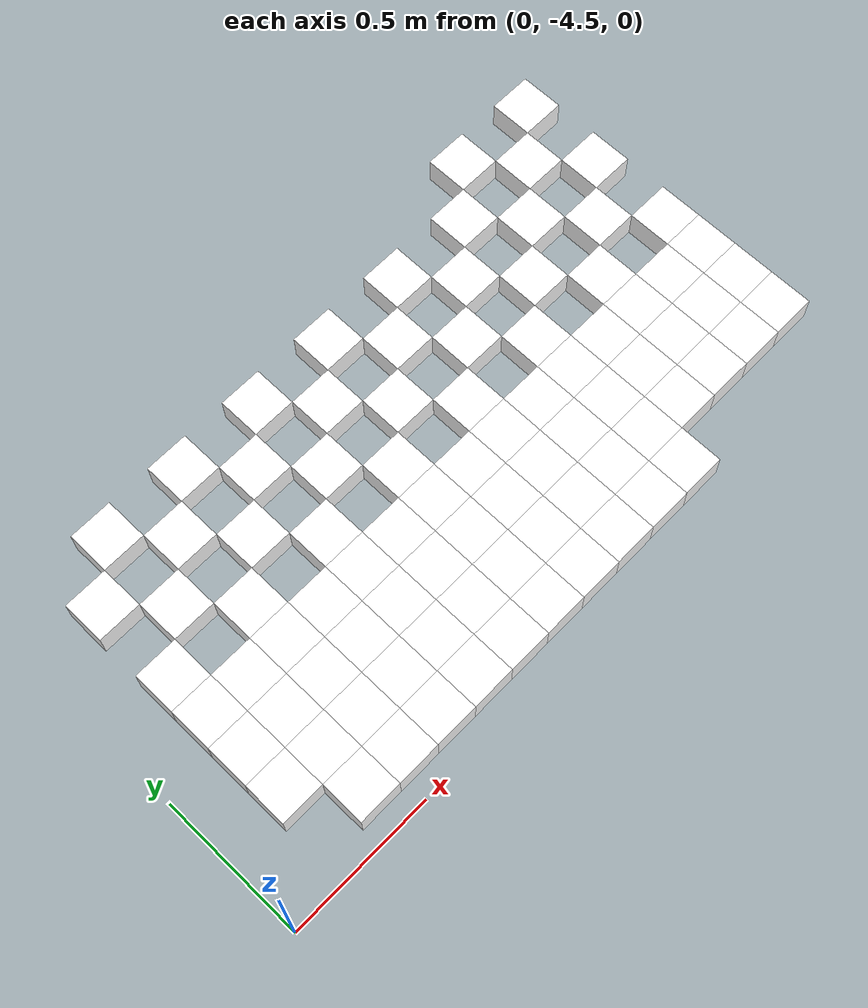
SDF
<sdf version="1.7">
 <world name="default">
  <include><uri>model://sun</uri></include>
  <model name="static_environment">
   <static>true</static>
   <link name="region_678">
    <pose>0.24963962053528332 -3.4502001898323322 0.0 0.0 0.0 4.7123</pose>
    <collision name="region_678_collision">
     <geometry><box><size>0.15 0.15 0.1</size></box></geometry>
     <surface><friction><ode><mu>1.0</mu><mu2>1.0</mu2></ode></friction></surface>
    </collision>
    <visual name="region_678_visual">
     <geometry><box><size>0.15 0.15 0.1</size></box></geometry>
     <material><ambient>1.0 1.0 1.0 1.0</ambient><diffuse>1.0 1.0 1.0 1.0</diffuse></material>
    </visual>
   </link>
   <link name="region_679">
    <pose>0.2496129264199114 -3.750200188644706 0.0 0.0 0.0 4.7123</pose>
    <collision name="region_679_collision">
     <geometry><box><size>0.15 0.15 0.1</size></box></geometry>
     <surface><friction><ode><mu>1.0</mu><mu2>1.0</mu2></ode></friction></surface>
    </collision>
    <visual name="region_679_visual">
     <geometry><box><size>0.15 0.15 0.1</size></box></geometry>
     <material><ambient>1.0 1.0 1.0 1.0</ambient><diffuse>1.0 1.0 1.0 1.0</diffuse></material>
    </visual>
   </link>
   <link name="region_683">
    <pose>0.39965296699915553 -3.3002135374838306 0.0 0.0 0.0 4.7123</pose>
    <collision name="region_683_collision">
     <geometry><box><size>0.15 0.15 0.1</size></box></geometry>
     <surface><friction><ode><mu>1.0</mu><mu2>1.0</mu2></ode></friction></surface>
    </collision>
    <visual name="region_683_visual">
     <geometry><box><size>0.15 0.15 0.1</size></box></geometry>
     <material><ambient>1.0 1.0 1.0 1.0</ambient><diffuse>1.0 1.0 1.0 1.0</diffuse></material>
    </visual>
   </link>
   <link name="region_684">
    <pose>0.39962627288378405 -3.6002135362962053 0.0 0.0 0.0 4.7123</pose>
    <collision name="region_684_collision">
     <geometry><box><size>0.15 0.15 0.1</size></box></geometry>
     <surface><friction><ode><mu>1.0</mu><mu2>1.0</mu2></ode></friction></surface>
    </collision>
    <visual name="region_684_visual">
     <geometry><box><size>0.15 0.15 0.1</size></box></geometry>
     <material><ambient>1.0 1.0 1.0 1.0</ambient><diffuse>1.0 1.0 1.0 1.0</diffuse></material>
    </visual>
   </link>
   <link name="region_688">
    <pose>0.5496396193476567 -3.4502268839477037 0.0 0.0 0.0 4.7123</pose>
    <collision name="region_688_collision">
     <geometry><box><size>0.15 0.15 0.1</size></box></geometry>
     <surface><friction><ode><mu>1.0</mu><mu2>1.0</mu2></ode></friction></surface>
    </collision>
    <visual name="region_688_visual">
     <geometry><box><size>0.15 0.15 0.1</size></box></geometry>
     <material><ambient>1.0 1.0 1.0 1.0</ambient><diffuse>1.0 1.0 1.0 1.0</diffuse></material>
    </visual>
   </link>
   <link name="region_689">
    <pose>0.5496129252322848 -3.7502268827600784 0.0 0.0 0.0 4.7123</pose>
    <collision name="region_689_collision">
     <geometry><box><size>0.15 0.15 0.1</size></box></geometry>
     <surface><friction><ode><mu>1.0</mu><mu2>1.0</mu2></ode></friction></surface>
    </collision>
    <visual name="region_689_visual">
     <geometry><box><size>0.15 0.15 0.1</size></box></geometry>
     <material><ambient>1.0 1.0 1.0 1.0</ambient><diffuse>1.0 1.0 1.0 1.0</diffuse></material>
    </visual>
   </link>
   <link name="region_693">
    <pose>0.6996529658115294 -3.3002402315992025 0.0 0.0 0.0 4.7123</pose>
    <collision name="region_693_collision">
     <geometry><box><size>0.15 0.15 0.1</size></box></geometry>
     <surface><friction><ode><mu>1.0</mu><mu2>1.0</mu2></ode></friction></surface>
    </collision>
    <visual name="region_693_visual">
     <geometry><box><size>0.15 0.15 0.1</size></box></geometry>
     <material><ambient>1.0 1.0 1.0 1.0</ambient><diffuse>1.0 1.0 1.0 1.0</diffuse></material>
    </visual>
   </link>
   <link name="region_694">
    <pose>0.6996262716961579 -3.600240230411577 0.0 0.0 0.0 4.7123</pose>
    <collision name="region_694_collision">
     <geometry><box><size>0.15 0.15 0.1</size></box></geometry>
     <surface><friction><ode><mu>1.0</mu><mu2>1.0</mu2></ode></friction></surface>
    </collision>
    <visual name="region_694_visual">
     <geometry><box><size>0.15 0.15 0.1</size></box></geometry>
     <material><ambient>1.0 1.0 1.0 1.0</ambient><diffuse>1.0 1.0 1.0 1.0</diffuse></material>
    </visual>
   </link>
   <link name="region_698">
    <pose>0.8496396181600301 -3.450253578063075 0.0 0.0 0.0 4.7123</pose>
    <collision name="region_698_collision">
     <geometry><box><size>0.15 0.15 0.1</size></box></geometry>
     <surface><friction><ode><mu>1.0</mu><mu2>1.0</mu2></ode></friction></surface>
    </collision>
    <visual name="region_698_visual">
     <geometry><box><size>0.15 0.15 0.1</size></box></geometry>
     <material><ambient>1.0 1.0 1.0 1.0</ambient><diffuse>1.0 1.0 1.0 1.0</diffuse></material>
    </visual>
   </link>
   <link name="region_699">
    <pose>0.8496129240446582 -3.75025357687545 0.0 0.0 0.0 4.7123</pose>
    <collision name="region_699_collision">
     <geometry><box><size>0.15 0.15 0.1</size></box></geometry>
     <surface><friction><ode><mu>1.0</mu><mu2>1.0</mu2></ode></friction></surface>
    </collision>
    <visual name="region_699_visual">
     <geometry><box><size>0.15 0.15 0.1</size></box></geometry>
     <material><ambient>1.0 1.0 1.0 1.0</ambient><diffuse>1.0 1.0 1.0 1.0</diffuse></material>
    </visual>
   </link>
   <link name="region_703">
    <pose>0.9996529646239027 -3.300266925714574 0.0 0.0 0.0 4.7123</pose>
    <collision name="region_703_collision">
     <geometry><box><size>0.15 0.15 0.1</size></box></geometry>
     <surface><friction><ode><mu>1.0</mu><mu2>1.0</mu2></ode></friction></surface>
    </collision>
    <visual name="region_703_visual">
     <geometry><box><size>0.15 0.15 0.1</size></box></geometry>
     <material><ambient>1.0 1.0 1.0 1.0</ambient><diffuse>1.0 1.0 1.0 1.0</diffuse></material>
    </visual>
   </link>
   <link name="region_704">
    <pose>0.9996262705085313 -3.6002669245269483 0.0 0.0 0.0 4.7123</pose>
    <collision name="region_704_collision">
     <geometry><box><size>0.15 0.15 0.1</size></box></geometry>
     <surface><friction><ode><mu>1.0</mu><mu2>1.0</mu2></ode></friction></surface>
    </collision>
    <visual name="region_704_visual">
     <geometry><box><size>0.15 0.15 0.1</size></box></geometry>
     <material><ambient>1.0 1.0 1.0 1.0</ambient><diffuse>1.0 1.0 1.0 1.0</diffuse></material>
    </visual>
   </link>
   <link name="region_708">
    <pose>1.1496396169724035 -3.4502802721784476 0.0 0.0 0.0 4.7123</pose>
    <collision name="region_708_collision">
     <geometry><box><size>0.15 0.15 0.1</size></box></geometry>
     <surface><friction><ode><mu>1.0</mu><mu2>1.0</mu2></ode></friction></surface>
    </collision>
    <visual name="region_708_visual">
     <geometry><box><size>0.15 0.15 0.1</size></box></geometry>
     <material><ambient>1.0 1.0 1.0 1.0</ambient><diffuse>1.0 1.0 1.0 1.0</diffuse></material>
    </visual>
   </link>
   <link name="region_709">
    <pose>1.1496129228570315 -3.7502802709908214 0.0 0.0 0.0 4.7123</pose>
    <collision name="region_709_collision">
     <geometry><box><size>0.15 0.15 0.1</size></box></geometry>
     <surface><friction><ode><mu>1.0</mu><mu2>1.0</mu2></ode></friction></surface>
    </collision>
    <visual name="region_709_visual">
     <geometry><box><size>0.15 0.15 0.1</size></box></geometry>
     <material><ambient>1.0 1.0 1.0 1.0</ambient><diffuse>1.0 1.0 1.0 1.0</diffuse></material>
    </visual>
   </link>
   <link name="region_713">
    <pose>1.2996529634362761 -3.300293619829946 0.0 0.0 0.0 4.7123</pose>
    <collision name="region_713_collision">
     <geometry><box><size>0.15 0.15 0.1</size></box></geometry>
     <surface><friction><ode><mu>1.0</mu><mu2>1.0</mu2></ode></friction></surface>
    </collision>
    <visual name="region_713_visual">
     <geometry><box><size>0.15 0.15 0.1</size></box></geometry>
     <material><ambient>1.0 1.0 1.0 1.0</ambient><diffuse>1.0 1.0 1.0 1.0</diffuse></material>
    </visual>
   </link>
   <link name="region_714">
    <pose>1.2996262693209046 -3.6002936186423207 0.0 0.0 0.0 4.7123</pose>
    <collision name="region_714_collision">
     <geometry><box><size>0.15 0.15 0.1</size></box></geometry>
     <surface><friction><ode><mu>1.0</mu><mu2>1.0</mu2></ode></friction></surface>
    </collision>
    <visual name="region_714_visual">
     <geometry><box><size>0.15 0.15 0.1</size></box></geometry>
     <material><ambient>1.0 1.0 1.0 1.0</ambient><diffuse>1.0 1.0 1.0 1.0</diffuse></material>
    </visual>
   </link>
   <link name="region_718">
    <pose>1.4496396157847773 -3.450306966293819 0.0 0.0 0.0 4.7123</pose>
    <collision name="region_718_collision">
     <geometry><box><size>0.15 0.15 0.1</size></box></geometry>
     <surface><friction><ode><mu>1.0</mu><mu2>1.0</mu2></ode></friction></surface>
    </collision>
    <visual name="region_718_visual">
     <geometry><box><size>0.15 0.15 0.1</size></box></geometry>
     <material><ambient>1.0 1.0 1.0 1.0</ambient><diffuse>1.0 1.0 1.0 1.0</diffuse></material>
    </visual>
   </link>
   <link name="region_719">
    <pose>1.4496129216694054 -3.750306965106193 0.0 0.0 0.0 4.7123</pose>
    <collision name="region_719_collision">
     <geometry><box><size>0.15 0.15 0.1</size></box></geometry>
     <surface><friction><ode><mu>1.0</mu><mu2>1.0</mu2></ode></friction></surface>
    </collision>
    <visual name="region_719_visual">
     <geometry><box><size>0.15 0.15 0.1</size></box></geometry>
     <material><ambient>1.0 1.0 1.0 1.0</ambient><diffuse>1.0 1.0 1.0 1.0</diffuse></material>
    </visual>
   </link>
   <link name="region_723">
    <pose>1.5996529622486495 -3.300320313945318 0.0 0.0 0.0 4.7123</pose>
    <collision name="region_723_collision">
     <geometry><box><size>0.15 0.15 0.1</size></box></geometry>
     <surface><friction><ode><mu>1.0</mu><mu2>1.0</mu2></ode></friction></surface>
    </collision>
    <visual name="region_723_visual">
     <geometry><box><size>0.15 0.15 0.1</size></box></geometry>
     <material><ambient>1.0 1.0 1.0 1.0</ambient><diffuse>1.0 1.0 1.0 1.0</diffuse></material>
    </visual>
   </link>
   <link name="region_724">
    <pose>1.599626268133278 -3.600320312757692 0.0 0.0 0.0 4.7123</pose>
    <collision name="region_724_collision">
     <geometry><box><size>0.15 0.15 0.1</size></box></geometry>
     <surface><friction><ode><mu>1.0</mu><mu2>1.0</mu2></ode></friction></surface>
    </collision>
    <visual name="region_724_visual">
     <geometry><box><size>0.15 0.15 0.1</size></box></geometry>
     <material><ambient>1.0 1.0 1.0 1.0</ambient><diffuse>1.0 1.0 1.0 1.0</diffuse></material>
    </visual>
   </link>
   <link name="region_728">
    <pose>1.7496396145971507 -3.4503336604091905 0.0 0.0 0.0 4.7123</pose>
    <collision name="region_728_collision">
     <geometry><box><size>0.15 0.15 0.1</size></box></geometry>
     <surface><friction><ode><mu>1.0</mu><mu2>1.0</mu2></ode></friction></surface>
    </collision>
    <visual name="region_728_visual">
     <geometry><box><size>0.15 0.15 0.1</size></box></geometry>
     <material><ambient>1.0 1.0 1.0 1.0</ambient><diffuse>1.0 1.0 1.0 1.0</diffuse></material>
    </visual>
   </link>
   <link name="region_729">
    <pose>1.7496129204817787 -3.7503336592215653 0.0 0.0 0.0 4.7123</pose>
    <collision name="region_729_collision">
     <geometry><box><size>0.15 0.15 0.1</size></box></geometry>
     <surface><friction><ode><mu>1.0</mu><mu2>1.0</mu2></ode></friction></surface>
    </collision>
    <visual name="region_729_visual">
     <geometry><box><size>0.15 0.15 0.1</size></box></geometry>
     <material><ambient>1.0 1.0 1.0 1.0</ambient><diffuse>1.0 1.0 1.0 1.0</diffuse></material>
    </visual>
   </link>
   <link name="region_733">
    <pose>1.8996529610610229 -3.3003470080606894 0.0 0.0 0.0 4.7123</pose>
    <collision name="region_733_collision">
     <geometry><box><size>0.15 0.15 0.1</size></box></geometry>
     <surface><friction><ode><mu>1.0</mu><mu2>1.0</mu2></ode></friction></surface>
    </collision>
    <visual name="region_733_visual">
     <geometry><box><size>0.15 0.15 0.1</size></box></geometry>
     <material><ambient>1.0 1.0 1.0 1.0</ambient><diffuse>1.0 1.0 1.0 1.0</diffuse></material>
    </visual>
   </link>
   <link name="region_734">
    <pose>1.8996262669456514 -3.6003470068730636 0.0 0.0 0.0 4.7123</pose>
    <collision name="region_734_collision">
     <geometry><box><size>0.15 0.15 0.1</size></box></geometry>
     <surface><friction><ode><mu>1.0</mu><mu2>1.0</mu2></ode></friction></surface>
    </collision>
    <visual name="region_734_visual">
     <geometry><box><size>0.15 0.15 0.1</size></box></geometry>
     <material><ambient>1.0 1.0 1.0 1.0</ambient><diffuse>1.0 1.0 1.0 1.0</diffuse></material>
    </visual>
   </link>
   <link name="region_737">
    <pose>2.0496663075248955 -3.1503603557121886 0.0 0.0 0.0 4.7123</pose>
    <collision name="region_737_collision">
     <geometry><box><size>0.15 0.15 0.1</size></box></geometry>
     <surface><friction><ode><mu>1.0</mu><mu2>1.0</mu2></ode></friction></surface>
    </collision>
    <visual name="region_737_visual">
     <geometry><box><size>0.15 0.15 0.1</size></box></geometry>
     <material><ambient>1.0 1.0 1.0 1.0</ambient><diffuse>1.0 1.0 1.0 1.0</diffuse></material>
    </visual>
   </link>
   <link name="region_738">
    <pose>2.049639613409524 -3.450360354524563 0.0 0.0 0.0 4.7123</pose>
    <collision name="region_738_collision">
     <geometry><box><size>0.15 0.15 0.1</size></box></geometry>
     <surface><friction><ode><mu>1.0</mu><mu2>1.0</mu2></ode></friction></surface>
    </collision>
    <visual name="region_738_visual">
     <geometry><box><size>0.15 0.15 0.1</size></box></geometry>
     <material><ambient>1.0 1.0 1.0 1.0</ambient><diffuse>1.0 1.0 1.0 1.0</diffuse></material>
    </visual>
   </link>
   <link name="region_739">
    <pose>2.0496129192941526 -3.7503603533369367 0.0 0.0 0.0 4.7123</pose>
    <collision name="region_739_collision">
     <geometry><box><size>0.15 0.15 0.1</size></box></geometry>
     <surface><friction><ode><mu>1.0</mu><mu2>1.0</mu2></ode></friction></surface>
    </collision>
    <visual name="region_739_visual">
     <geometry><box><size>0.15 0.15 0.1</size></box></geometry>
     <material><ambient>1.0 1.0 1.0 1.0</ambient><diffuse>1.0 1.0 1.0 1.0</diffuse></material>
    </visual>
   </link>
   <link name="region_743">
    <pose>2.199652959873397 -3.3003737021760613 0.0 0.0 0.0 4.7123</pose>
    <collision name="region_743_collision">
     <geometry><box><size>0.15 0.15 0.1</size></box></geometry>
     <surface><friction><ode><mu>1.0</mu><mu2>1.0</mu2></ode></friction></surface>
    </collision>
    <visual name="region_743_visual">
     <geometry><box><size>0.15 0.15 0.1</size></box></geometry>
     <material><ambient>1.0 1.0 1.0 1.0</ambient><diffuse>1.0 1.0 1.0 1.0</diffuse></material>
    </visual>
   </link>
   <link name="region_744">
    <pose>2.1996262657580257 -3.600373700988435 0.0 0.0 0.0 4.7123</pose>
    <collision name="region_744_collision">
     <geometry><box><size>0.15 0.15 0.1</size></box></geometry>
     <surface><friction><ode><mu>1.0</mu><mu2>1.0</mu2></ode></friction></surface>
    </collision>
    <visual name="region_744_visual">
     <geometry><box><size>0.15 0.15 0.1</size></box></geometry>
     <material><ambient>1.0 1.0 1.0 1.0</ambient><diffuse>1.0 1.0 1.0 1.0</diffuse></material>
    </visual>
   </link>
   <link name="region_747">
    <pose>2.3496663063372702 -3.15038704982756 0.0 0.0 0.0 4.7123</pose>
    <collision name="region_747_collision">
     <geometry><box><size>0.15 0.15 0.1</size></box></geometry>
     <surface><friction><ode><mu>1.0</mu><mu2>1.0</mu2></ode></friction></surface>
    </collision>
    <visual name="region_747_visual">
     <geometry><box><size>0.15 0.15 0.1</size></box></geometry>
     <material><ambient>1.0 1.0 1.0 1.0</ambient><diffuse>1.0 1.0 1.0 1.0</diffuse></material>
    </visual>
   </link>
   <link name="region_748">
    <pose>2.3496396122218988 -3.4503870486399344 0.0 0.0 0.0 4.7123</pose>
    <collision name="region_748_collision">
     <geometry><box><size>0.15 0.15 0.1</size></box></geometry>
     <surface><friction><ode><mu>1.0</mu><mu2>1.0</mu2></ode></friction></surface>
    </collision>
    <visual name="region_748_visual">
     <geometry><box><size>0.15 0.15 0.1</size></box></geometry>
     <material><ambient>1.0 1.0 1.0 1.0</ambient><diffuse>1.0 1.0 1.0 1.0</diffuse></material>
    </visual>
   </link>
   <link name="region_749">
    <pose>2.3496129181065273 -3.750387047452308 0.0 0.0 0.0 4.7123</pose>
    <collision name="region_749_collision">
     <geometry><box><size>0.15 0.15 0.1</size></box></geometry>
     <surface><friction><ode><mu>1.0</mu><mu2>1.0</mu2></ode></friction></surface>
    </collision>
    <visual name="region_749_visual">
     <geometry><box><size>0.15 0.15 0.1</size></box></geometry>
     <material><ambient>1.0 1.0 1.0 1.0</ambient><diffuse>1.0 1.0 1.0 1.0</diffuse></material>
    </visual>
   </link>
   <link name="region_900">
    <pose>0.24959957936222565 -3.9002001880508925 0.0 0.0 0.0 4.7123</pose>
    <collision name="region_900_collision">
     <geometry><box><size>0.15 0.15 0.1</size></box></geometry>
     <surface><friction><ode><mu>1.0</mu><mu2>1.0</mu2></ode></friction></surface>
    </collision>
    <visual name="region_900_visual">
     <geometry><box><size>0.15 0.15 0.1</size></box></geometry>
     <material><ambient>1.0 1.0 1.0 1.0</ambient><diffuse>1.0 1.0 1.0 1.0</diffuse></material>
    </visual>
   </link>
   <link name="region_901">
    <pose>0.2495862323045399 -4.05020018745708 0.0 0.0 0.0 4.7123</pose>
    <collision name="region_901_collision">
     <geometry><box><size>0.15 0.15 0.1</size></box></geometry>
     <surface><friction><ode><mu>1.0</mu><mu2>1.0</mu2></ode></friction></surface>
    </collision>
    <visual name="region_901_visual">
     <geometry><box><size>0.15 0.15 0.1</size></box></geometry>
     <material><ambient>1.0 1.0 1.0 1.0</ambient><diffuse>1.0 1.0 1.0 1.0</diffuse></material>
    </visual>
   </link>
   <link name="region_902">
    <pose>0.24957288524685373 -4.200200186863268 0.0 0.0 0.0 4.7123</pose>
    <collision name="region_902_collision">
     <geometry><box><size>0.15 0.15 0.1</size></box></geometry>
     <surface><friction><ode><mu>1.0</mu><mu2>1.0</mu2></ode></friction></surface>
    </collision>
    <visual name="region_902_visual">
     <geometry><box><size>0.15 0.15 0.1</size></box></geometry>
     <material><ambient>1.0 1.0 1.0 1.0</ambient><diffuse>1.0 1.0 1.0 1.0</diffuse></material>
    </visual>
   </link>
   <link name="region_910">
    <pose>0.3995995787684121 -3.9002135351085783 0.0 0.0 0.0 4.7123</pose>
    <collision name="region_910_collision">
     <geometry><box><size>0.15 0.15 0.1</size></box></geometry>
     <surface><friction><ode><mu>1.0</mu><mu2>1.0</mu2></ode></friction></surface>
    </collision>
    <visual name="region_910_visual">
     <geometry><box><size>0.15 0.15 0.1</size></box></geometry>
     <material><ambient>1.0 1.0 1.0 1.0</ambient><diffuse>1.0 1.0 1.0 1.0</diffuse></material>
    </visual>
   </link>
   <link name="region_911">
    <pose>0.3995862317107264 -4.050213534514766 0.0 0.0 0.0 4.7123</pose>
    <collision name="region_911_collision">
     <geometry><box><size>0.15 0.15 0.1</size></box></geometry>
     <surface><friction><ode><mu>1.0</mu><mu2>1.0</mu2></ode></friction></surface>
    </collision>
    <visual name="region_911_visual">
     <geometry><box><size>0.15 0.15 0.1</size></box></geometry>
     <material><ambient>1.0 1.0 1.0 1.0</ambient><diffuse>1.0 1.0 1.0 1.0</diffuse></material>
    </visual>
   </link>
   <link name="region_912">
    <pose>0.3995728846530402 -4.200213533920953 0.0 0.0 0.0 4.7123</pose>
    <collision name="region_912_collision">
     <geometry><box><size>0.15 0.15 0.1</size></box></geometry>
     <surface><friction><ode><mu>1.0</mu><mu2>1.0</mu2></ode></friction></surface>
    </collision>
    <visual name="region_912_visual">
     <geometry><box><size>0.15 0.15 0.1</size></box></geometry>
     <material><ambient>1.0 1.0 1.0 1.0</ambient><diffuse>1.0 1.0 1.0 1.0</diffuse></material>
    </visual>
   </link>
   <link name="region_913">
    <pose>0.39955953759535445 -4.350213533327141 0.0 0.0 0.0 4.7123</pose>
    <collision name="region_913_collision">
     <geometry><box><size>0.15 0.15 0.1</size></box></geometry>
     <surface><friction><ode><mu>1.0</mu><mu2>1.0</mu2></ode></friction></surface>
    </collision>
    <visual name="region_913_visual">
     <geometry><box><size>0.15 0.15 0.1</size></box></geometry>
     <material><ambient>1.0 1.0 1.0 1.0</ambient><diffuse>1.0 1.0 1.0 1.0</diffuse></material>
    </visual>
   </link>
   <link name="region_920">
    <pose>0.549599578174599 -3.900226882166264 0.0 0.0 0.0 4.7123</pose>
    <collision name="region_920_collision">
     <geometry><box><size>0.15 0.15 0.1</size></box></geometry>
     <surface><friction><ode><mu>1.0</mu><mu2>1.0</mu2></ode></friction></surface>
    </collision>
    <visual name="region_920_visual">
     <geometry><box><size>0.15 0.15 0.1</size></box></geometry>
     <material><ambient>1.0 1.0 1.0 1.0</ambient><diffuse>1.0 1.0 1.0 1.0</diffuse></material>
    </visual>
   </link>
   <link name="region_921">
    <pose>0.5495862311169133 -4.050226881572452 0.0 0.0 0.0 4.7123</pose>
    <collision name="region_921_collision">
     <geometry><box><size>0.15 0.15 0.1</size></box></geometry>
     <surface><friction><ode><mu>1.0</mu><mu2>1.0</mu2></ode></friction></surface>
    </collision>
    <visual name="region_921_visual">
     <geometry><box><size>0.15 0.15 0.1</size></box></geometry>
     <material><ambient>1.0 1.0 1.0 1.0</ambient><diffuse>1.0 1.0 1.0 1.0</diffuse></material>
    </visual>
   </link>
   <link name="region_922">
    <pose>0.5495728840592271 -4.200226880978639 0.0 0.0 0.0 4.7123</pose>
    <collision name="region_922_collision">
     <geometry><box><size>0.15 0.15 0.1</size></box></geometry>
     <surface><friction><ode><mu>1.0</mu><mu2>1.0</mu2></ode></friction></surface>
    </collision>
    <visual name="region_922_visual">
     <geometry><box><size>0.15 0.15 0.1</size></box></geometry>
     <material><ambient>1.0 1.0 1.0 1.0</ambient><diffuse>1.0 1.0 1.0 1.0</diffuse></material>
    </visual>
   </link>
   <link name="region_923">
    <pose>0.5495595370015414 -4.3502268803848265 0.0 0.0 0.0 4.7123</pose>
    <collision name="region_923_collision">
     <geometry><box><size>0.15 0.15 0.1</size></box></geometry>
     <surface><friction><ode><mu>1.0</mu><mu2>1.0</mu2></ode></friction></surface>
    </collision>
    <visual name="region_923_visual">
     <geometry><box><size>0.15 0.15 0.1</size></box></geometry>
     <material><ambient>1.0 1.0 1.0 1.0</ambient><diffuse>1.0 1.0 1.0 1.0</diffuse></material>
    </visual>
   </link>
   <link name="region_930">
    <pose>0.699599577580786 -3.9002402292239506 0.0 0.0 0.0 4.7123</pose>
    <collision name="region_930_collision">
     <geometry><box><size>0.15 0.15 0.1</size></box></geometry>
     <surface><friction><ode><mu>1.0</mu><mu2>1.0</mu2></ode></friction></surface>
    </collision>
    <visual name="region_930_visual">
     <geometry><box><size>0.15 0.15 0.1</size></box></geometry>
     <material><ambient>1.0 1.0 1.0 1.0</ambient><diffuse>1.0 1.0 1.0 1.0</diffuse></material>
    </visual>
   </link>
   <link name="region_931">
    <pose>0.6995862305231002 -4.0502402286301376 0.0 0.0 0.0 4.7123</pose>
    <collision name="region_931_collision">
     <geometry><box><size>0.15 0.15 0.1</size></box></geometry>
     <surface><friction><ode><mu>1.0</mu><mu2>1.0</mu2></ode></friction></surface>
    </collision>
    <visual name="region_931_visual">
     <geometry><box><size>0.15 0.15 0.1</size></box></geometry>
     <material><ambient>1.0 1.0 1.0 1.0</ambient><diffuse>1.0 1.0 1.0 1.0</diffuse></material>
    </visual>
   </link>
   <link name="region_932">
    <pose>0.699572883465414 -4.200240228036325 0.0 0.0 0.0 4.7123</pose>
    <collision name="region_932_collision">
     <geometry><box><size>0.15 0.15 0.1</size></box></geometry>
     <surface><friction><ode><mu>1.0</mu><mu2>1.0</mu2></ode></friction></surface>
    </collision>
    <visual name="region_932_visual">
     <geometry><box><size>0.15 0.15 0.1</size></box></geometry>
     <material><ambient>1.0 1.0 1.0 1.0</ambient><diffuse>1.0 1.0 1.0 1.0</diffuse></material>
    </visual>
   </link>
   <link name="region_933">
    <pose>0.6995595364077283 -4.350240227442512 0.0 0.0 0.0 4.7123</pose>
    <collision name="region_933_collision">
     <geometry><box><size>0.15 0.15 0.1</size></box></geometry>
     <surface><friction><ode><mu>1.0</mu><mu2>1.0</mu2></ode></friction></surface>
    </collision>
    <visual name="region_933_visual">
     <geometry><box><size>0.15 0.15 0.1</size></box></geometry>
     <material><ambient>1.0 1.0 1.0 1.0</ambient><diffuse>1.0 1.0 1.0 1.0</diffuse></material>
    </visual>
   </link>
   <link name="region_940">
    <pose>0.8495995769869724 -3.9002535762816364 0.0 0.0 0.0 4.7123</pose>
    <collision name="region_940_collision">
     <geometry><box><size>0.15 0.15 0.1</size></box></geometry>
     <surface><friction><ode><mu>1.0</mu><mu2>1.0</mu2></ode></friction></surface>
    </collision>
    <visual name="region_940_visual">
     <geometry><box><size>0.15 0.15 0.1</size></box></geometry>
     <material><ambient>1.0 1.0 1.0 1.0</ambient><diffuse>1.0 1.0 1.0 1.0</diffuse></material>
    </visual>
   </link>
   <link name="region_941">
    <pose>0.8495862299292867 -4.050253575687823 0.0 0.0 0.0 4.7123</pose>
    <collision name="region_941_collision">
     <geometry><box><size>0.15 0.15 0.1</size></box></geometry>
     <surface><friction><ode><mu>1.0</mu><mu2>1.0</mu2></ode></friction></surface>
    </collision>
    <visual name="region_941_visual">
     <geometry><box><size>0.15 0.15 0.1</size></box></geometry>
     <material><ambient>1.0 1.0 1.0 1.0</ambient><diffuse>1.0 1.0 1.0 1.0</diffuse></material>
    </visual>
   </link>
   <link name="region_942">
    <pose>0.8495728828716005 -4.200253575094011 0.0 0.0 0.0 4.7123</pose>
    <collision name="region_942_collision">
     <geometry><box><size>0.15 0.15 0.1</size></box></geometry>
     <surface><friction><ode><mu>1.0</mu><mu2>1.0</mu2></ode></friction></surface>
    </collision>
    <visual name="region_942_visual">
     <geometry><box><size>0.15 0.15 0.1</size></box></geometry>
     <material><ambient>1.0 1.0 1.0 1.0</ambient><diffuse>1.0 1.0 1.0 1.0</diffuse></material>
    </visual>
   </link>
   <link name="region_943">
    <pose>0.8495595358139147 -4.350253574500198 0.0 0.0 0.0 4.7123</pose>
    <collision name="region_943_collision">
     <geometry><box><size>0.15 0.15 0.1</size></box></geometry>
     <surface><friction><ode><mu>1.0</mu><mu2>1.0</mu2></ode></friction></surface>
    </collision>
    <visual name="region_943_visual">
     <geometry><box><size>0.15 0.15 0.1</size></box></geometry>
     <material><ambient>1.0 1.0 1.0 1.0</ambient><diffuse>1.0 1.0 1.0 1.0</diffuse></material>
    </visual>
   </link>
   <link name="region_950">
    <pose>0.9995995763931593 -3.900266923339322 0.0 0.0 0.0 4.7123</pose>
    <collision name="region_950_collision">
     <geometry><box><size>0.15 0.15 0.1</size></box></geometry>
     <surface><friction><ode><mu>1.0</mu><mu2>1.0</mu2></ode></friction></surface>
    </collision>
    <visual name="region_950_visual">
     <geometry><box><size>0.15 0.15 0.1</size></box></geometry>
     <material><ambient>1.0 1.0 1.0 1.0</ambient><diffuse>1.0 1.0 1.0 1.0</diffuse></material>
    </visual>
   </link>
   <link name="region_951">
    <pose>0.9995862293354736 -4.05026692274551 0.0 0.0 0.0 4.7123</pose>
    <collision name="region_951_collision">
     <geometry><box><size>0.15 0.15 0.1</size></box></geometry>
     <surface><friction><ode><mu>1.0</mu><mu2>1.0</mu2></ode></friction></surface>
    </collision>
    <visual name="region_951_visual">
     <geometry><box><size>0.15 0.15 0.1</size></box></geometry>
     <material><ambient>1.0 1.0 1.0 1.0</ambient><diffuse>1.0 1.0 1.0 1.0</diffuse></material>
    </visual>
   </link>
   <link name="region_952">
    <pose>0.9995728822777874 -4.200266922151696 0.0 0.0 0.0 4.7123</pose>
    <collision name="region_952_collision">
     <geometry><box><size>0.15 0.15 0.1</size></box></geometry>
     <surface><friction><ode><mu>1.0</mu><mu2>1.0</mu2></ode></friction></surface>
    </collision>
    <visual name="region_952_visual">
     <geometry><box><size>0.15 0.15 0.1</size></box></geometry>
     <material><ambient>1.0 1.0 1.0 1.0</ambient><diffuse>1.0 1.0 1.0 1.0</diffuse></material>
    </visual>
   </link>
   <link name="region_953">
    <pose>0.9995595352201017 -4.350266921557884 0.0 0.0 0.0 4.7123</pose>
    <collision name="region_953_collision">
     <geometry><box><size>0.15 0.15 0.1</size></box></geometry>
     <surface><friction><ode><mu>1.0</mu><mu2>1.0</mu2></ode></friction></surface>
    </collision>
    <visual name="region_953_visual">
     <geometry><box><size>0.15 0.15 0.1</size></box></geometry>
     <material><ambient>1.0 1.0 1.0 1.0</ambient><diffuse>1.0 1.0 1.0 1.0</diffuse></material>
    </visual>
   </link>
   <link name="region_960">
    <pose>1.1495995757993458 -3.900280270397008 0.0 0.0 0.0 4.7123</pose>
    <collision name="region_960_collision">
     <geometry><box><size>0.15 0.15 0.1</size></box></geometry>
     <surface><friction><ode><mu>1.0</mu><mu2>1.0</mu2></ode></friction></surface>
    </collision>
    <visual name="region_960_visual">
     <geometry><box><size>0.15 0.15 0.1</size></box></geometry>
     <material><ambient>1.0 1.0 1.0 1.0</ambient><diffuse>1.0 1.0 1.0 1.0</diffuse></material>
    </visual>
   </link>
   <link name="region_961">
    <pose>1.14958622874166 -4.050280269803196 0.0 0.0 0.0 4.7123</pose>
    <collision name="region_961_collision">
     <geometry><box><size>0.15 0.15 0.1</size></box></geometry>
     <surface><friction><ode><mu>1.0</mu><mu2>1.0</mu2></ode></friction></surface>
    </collision>
    <visual name="region_961_visual">
     <geometry><box><size>0.15 0.15 0.1</size></box></geometry>
     <material><ambient>1.0 1.0 1.0 1.0</ambient><diffuse>1.0 1.0 1.0 1.0</diffuse></material>
    </visual>
   </link>
   <link name="region_962">
    <pose>1.1495728816839739 -4.200280269209383 0.0 0.0 0.0 4.7123</pose>
    <collision name="region_962_collision">
     <geometry><box><size>0.15 0.15 0.1</size></box></geometry>
     <surface><friction><ode><mu>1.0</mu><mu2>1.0</mu2></ode></friction></surface>
    </collision>
    <visual name="region_962_visual">
     <geometry><box><size>0.15 0.15 0.1</size></box></geometry>
     <material><ambient>1.0 1.0 1.0 1.0</ambient><diffuse>1.0 1.0 1.0 1.0</diffuse></material>
    </visual>
   </link>
   <link name="region_963">
    <pose>1.1495595346262881 -4.3502802686155695 0.0 0.0 0.0 4.7123</pose>
    <collision name="region_963_collision">
     <geometry><box><size>0.15 0.15 0.1</size></box></geometry>
     <surface><friction><ode><mu>1.0</mu><mu2>1.0</mu2></ode></friction></surface>
    </collision>
    <visual name="region_963_visual">
     <geometry><box><size>0.15 0.15 0.1</size></box></geometry>
     <material><ambient>1.0 1.0 1.0 1.0</ambient><diffuse>1.0 1.0 1.0 1.0</diffuse></material>
    </visual>
   </link>
   <link name="region_970">
    <pose>1.2995995752055327 -3.9002936174546936 0.0 0.0 0.0 4.7123</pose>
    <collision name="region_970_collision">
     <geometry><box><size>0.15 0.15 0.1</size></box></geometry>
     <surface><friction><ode><mu>1.0</mu><mu2>1.0</mu2></ode></friction></surface>
    </collision>
    <visual name="region_970_visual">
     <geometry><box><size>0.15 0.15 0.1</size></box></geometry>
     <material><ambient>1.0 1.0 1.0 1.0</ambient><diffuse>1.0 1.0 1.0 1.0</diffuse></material>
    </visual>
   </link>
   <link name="region_971">
    <pose>1.299586228147847 -4.050293616860881 0.0 0.0 0.0 4.7123</pose>
    <collision name="region_971_collision">
     <geometry><box><size>0.15 0.15 0.1</size></box></geometry>
     <surface><friction><ode><mu>1.0</mu><mu2>1.0</mu2></ode></friction></surface>
    </collision>
    <visual name="region_971_visual">
     <geometry><box><size>0.15 0.15 0.1</size></box></geometry>
     <material><ambient>1.0 1.0 1.0 1.0</ambient><diffuse>1.0 1.0 1.0 1.0</diffuse></material>
    </visual>
   </link>
   <link name="region_972">
    <pose>1.2995728810901608 -4.200293616267069 0.0 0.0 0.0 4.7123</pose>
    <collision name="region_972_collision">
     <geometry><box><size>0.15 0.15 0.1</size></box></geometry>
     <surface><friction><ode><mu>1.0</mu><mu2>1.0</mu2></ode></friction></surface>
    </collision>
    <visual name="region_972_visual">
     <geometry><box><size>0.15 0.15 0.1</size></box></geometry>
     <material><ambient>1.0 1.0 1.0 1.0</ambient><diffuse>1.0 1.0 1.0 1.0</diffuse></material>
    </visual>
   </link>
   <link name="region_973">
    <pose>1.299559534032475 -4.350293615673256 0.0 0.0 0.0 4.7123</pose>
    <collision name="region_973_collision">
     <geometry><box><size>0.15 0.15 0.1</size></box></geometry>
     <surface><friction><ode><mu>1.0</mu><mu2>1.0</mu2></ode></friction></surface>
    </collision>
    <visual name="region_973_visual">
     <geometry><box><size>0.15 0.15 0.1</size></box></geometry>
     <material><ambient>1.0 1.0 1.0 1.0</ambient><diffuse>1.0 1.0 1.0 1.0</diffuse></material>
    </visual>
   </link>
   <link name="region_980">
    <pose>1.4495995746117196 -3.9003069645123793 0.0 0.0 0.0 4.7123</pose>
    <collision name="region_980_collision">
     <geometry><box><size>0.15 0.15 0.1</size></box></geometry>
     <surface><friction><ode><mu>1.0</mu><mu2>1.0</mu2></ode></friction></surface>
    </collision>
    <visual name="region_980_visual">
     <geometry><box><size>0.15 0.15 0.1</size></box></geometry>
     <material><ambient>1.0 1.0 1.0 1.0</ambient><diffuse>1.0 1.0 1.0 1.0</diffuse></material>
    </visual>
   </link>
   <link name="region_981">
    <pose>1.4495862275540339 -4.050306963918567 0.0 0.0 0.0 4.7123</pose>
    <collision name="region_981_collision">
     <geometry><box><size>0.15 0.15 0.1</size></box></geometry>
     <surface><friction><ode><mu>1.0</mu><mu2>1.0</mu2></ode></friction></surface>
    </collision>
    <visual name="region_981_visual">
     <geometry><box><size>0.15 0.15 0.1</size></box></geometry>
     <material><ambient>1.0 1.0 1.0 1.0</ambient><diffuse>1.0 1.0 1.0 1.0</diffuse></material>
    </visual>
   </link>
   <link name="region_982">
    <pose>1.4495728804963477 -4.2003069633247545 0.0 0.0 0.0 4.7123</pose>
    <collision name="region_982_collision">
     <geometry><box><size>0.15 0.15 0.1</size></box></geometry>
     <surface><friction><ode><mu>1.0</mu><mu2>1.0</mu2></ode></friction></surface>
    </collision>
    <visual name="region_982_visual">
     <geometry><box><size>0.15 0.15 0.1</size></box></geometry>
     <material><ambient>1.0 1.0 1.0 1.0</ambient><diffuse>1.0 1.0 1.0 1.0</diffuse></material>
    </visual>
   </link>
   <link name="region_983">
    <pose>1.449559533438662 -4.350306962730942 0.0 0.0 0.0 4.7123</pose>
    <collision name="region_983_collision">
     <geometry><box><size>0.15 0.15 0.1</size></box></geometry>
     <surface><friction><ode><mu>1.0</mu><mu2>1.0</mu2></ode></friction></surface>
    </collision>
    <visual name="region_983_visual">
     <geometry><box><size>0.15 0.15 0.1</size></box></geometry>
     <material><ambient>1.0 1.0 1.0 1.0</ambient><diffuse>1.0 1.0 1.0 1.0</diffuse></material>
    </visual>
   </link>
   <link name="region_990">
    <pose>1.599599574017906 -3.900320311570065 0.0 0.0 0.0 4.7123</pose>
    <collision name="region_990_collision">
     <geometry><box><size>0.15 0.15 0.1</size></box></geometry>
     <surface><friction><ode><mu>1.0</mu><mu2>1.0</mu2></ode></friction></surface>
    </collision>
    <visual name="region_990_visual">
     <geometry><box><size>0.15 0.15 0.1</size></box></geometry>
     <material><ambient>1.0 1.0 1.0 1.0</ambient><diffuse>1.0 1.0 1.0 1.0</diffuse></material>
    </visual>
   </link>
   <link name="region_991">
    <pose>1.5995862269602203 -4.050320310976253 0.0 0.0 0.0 4.7123</pose>
    <collision name="region_991_collision">
     <geometry><box><size>0.15 0.15 0.1</size></box></geometry>
     <surface><friction><ode><mu>1.0</mu><mu2>1.0</mu2></ode></friction></surface>
    </collision>
    <visual name="region_991_visual">
     <geometry><box><size>0.15 0.15 0.1</size></box></geometry>
     <material><ambient>1.0 1.0 1.0 1.0</ambient><diffuse>1.0 1.0 1.0 1.0</diffuse></material>
    </visual>
   </link>
   <link name="region_992">
    <pose>1.5995728799025342 -4.20032031038244 0.0 0.0 0.0 4.7123</pose>
    <collision name="region_992_collision">
     <geometry><box><size>0.15 0.15 0.1</size></box></geometry>
     <surface><friction><ode><mu>1.0</mu><mu2>1.0</mu2></ode></friction></surface>
    </collision>
    <visual name="region_992_visual">
     <geometry><box><size>0.15 0.15 0.1</size></box></geometry>
     <material><ambient>1.0 1.0 1.0 1.0</ambient><diffuse>1.0 1.0 1.0 1.0</diffuse></material>
    </visual>
   </link>
   <link name="region_993">
    <pose>1.5995595328448484 -4.350320309788628 0.0 0.0 0.0 4.7123</pose>
    <collision name="region_993_collision">
     <geometry><box><size>0.15 0.15 0.1</size></box></geometry>
     <surface><friction><ode><mu>1.0</mu><mu2>1.0</mu2></ode></friction></surface>
    </collision>
    <visual name="region_993_visual">
     <geometry><box><size>0.15 0.15 0.1</size></box></geometry>
     <material><ambient>1.0 1.0 1.0 1.0</ambient><diffuse>1.0 1.0 1.0 1.0</diffuse></material>
    </visual>
   </link>
   <link name="region_1000">
    <pose>1.749599573424093 -3.9003336586277517 0.0 0.0 0.0 4.7123</pose>
    <collision name="region_1000_collision">
     <geometry><box><size>0.15 0.15 0.1</size></box></geometry>
     <surface><friction><ode><mu>1.0</mu><mu2>1.0</mu2></ode></friction></surface>
    </collision>
    <visual name="region_1000_visual">
     <geometry><box><size>0.15 0.15 0.1</size></box></geometry>
     <material><ambient>1.0 1.0 1.0 1.0</ambient><diffuse>1.0 1.0 1.0 1.0</diffuse></material>
    </visual>
   </link>
   <link name="region_1001">
    <pose>1.7495862263664073 -4.050333658033939 0.0 0.0 0.0 4.7123</pose>
    <collision name="region_1001_collision">
     <geometry><box><size>0.15 0.15 0.1</size></box></geometry>
     <surface><friction><ode><mu>1.0</mu><mu2>1.0</mu2></ode></friction></surface>
    </collision>
    <visual name="region_1001_visual">
     <geometry><box><size>0.15 0.15 0.1</size></box></geometry>
     <material><ambient>1.0 1.0 1.0 1.0</ambient><diffuse>1.0 1.0 1.0 1.0</diffuse></material>
    </visual>
   </link>
   <link name="region_1002">
    <pose>1.749572879308721 -4.200333657440126 0.0 0.0 0.0 4.7123</pose>
    <collision name="region_1002_collision">
     <geometry><box><size>0.15 0.15 0.1</size></box></geometry>
     <surface><friction><ode><mu>1.0</mu><mu2>1.0</mu2></ode></friction></surface>
    </collision>
    <visual name="region_1002_visual">
     <geometry><box><size>0.15 0.15 0.1</size></box></geometry>
     <material><ambient>1.0 1.0 1.0 1.0</ambient><diffuse>1.0 1.0 1.0 1.0</diffuse></material>
    </visual>
   </link>
   <link name="region_1003">
    <pose>1.7495595322510353 -4.350333656846313 0.0 0.0 0.0 4.7123</pose>
    <collision name="region_1003_collision">
     <geometry><box><size>0.15 0.15 0.1</size></box></geometry>
     <surface><friction><ode><mu>1.0</mu><mu2>1.0</mu2></ode></friction></surface>
    </collision>
    <visual name="region_1003_visual">
     <geometry><box><size>0.15 0.15 0.1</size></box></geometry>
     <material><ambient>1.0 1.0 1.0 1.0</ambient><diffuse>1.0 1.0 1.0 1.0</diffuse></material>
    </visual>
   </link>
   <link name="region_1010">
    <pose>1.8995995728302795 -3.9003470056854375 0.0 0.0 0.0 4.7123</pose>
    <collision name="region_1010_collision">
     <geometry><box><size>0.15 0.15 0.1</size></box></geometry>
     <surface><friction><ode><mu>1.0</mu><mu2>1.0</mu2></ode></friction></surface>
    </collision>
    <visual name="region_1010_visual">
     <geometry><box><size>0.15 0.15 0.1</size></box></geometry>
     <material><ambient>1.0 1.0 1.0 1.0</ambient><diffuse>1.0 1.0 1.0 1.0</diffuse></material>
    </visual>
   </link>
   <link name="region_1011">
    <pose>1.8995862257725937 -4.050347005091625 0.0 0.0 0.0 4.7123</pose>
    <collision name="region_1011_collision">
     <geometry><box><size>0.15 0.15 0.1</size></box></geometry>
     <surface><friction><ode><mu>1.0</mu><mu2>1.0</mu2></ode></friction></surface>
    </collision>
    <visual name="region_1011_visual">
     <geometry><box><size>0.15 0.15 0.1</size></box></geometry>
     <material><ambient>1.0 1.0 1.0 1.0</ambient><diffuse>1.0 1.0 1.0 1.0</diffuse></material>
    </visual>
   </link>
   <link name="region_1012">
    <pose>1.8995728787149075 -4.200347004497812 0.0 0.0 0.0 4.7123</pose>
    <collision name="region_1012_collision">
     <geometry><box><size>0.15 0.15 0.1</size></box></geometry>
     <surface><friction><ode><mu>1.0</mu><mu2>1.0</mu2></ode></friction></surface>
    </collision>
    <visual name="region_1012_visual">
     <geometry><box><size>0.15 0.15 0.1</size></box></geometry>
     <material><ambient>1.0 1.0 1.0 1.0</ambient><diffuse>1.0 1.0 1.0 1.0</diffuse></material>
    </visual>
   </link>
   <link name="region_1020">
    <pose>2.049599572236466 -3.900360352743123 0.0 0.0 0.0 4.7123</pose>
    <collision name="region_1020_collision">
     <geometry><box><size>0.15 0.15 0.1</size></box></geometry>
     <surface><friction><ode><mu>1.0</mu><mu2>1.0</mu2></ode></friction></surface>
    </collision>
    <visual name="region_1020_visual">
     <geometry><box><size>0.15 0.15 0.1</size></box></geometry>
     <material><ambient>1.0 1.0 1.0 1.0</ambient><diffuse>1.0 1.0 1.0 1.0</diffuse></material>
    </visual>
   </link>
   <link name="region_1021">
    <pose>2.04958622517878 -4.050360352149311 0.0 0.0 0.0 4.7123</pose>
    <collision name="region_1021_collision">
     <geometry><box><size>0.15 0.15 0.1</size></box></geometry>
     <surface><friction><ode><mu>1.0</mu><mu2>1.0</mu2></ode></friction></surface>
    </collision>
    <visual name="region_1021_visual">
     <geometry><box><size>0.15 0.15 0.1</size></box></geometry>
     <material><ambient>1.0 1.0 1.0 1.0</ambient><diffuse>1.0 1.0 1.0 1.0</diffuse></material>
    </visual>
   </link>
   <link name="region_1022">
    <pose>2.0495728781210945 -4.2003603515554975 0.0 0.0 0.0 4.7123</pose>
    <collision name="region_1022_collision">
     <geometry><box><size>0.15 0.15 0.1</size></box></geometry>
     <surface><friction><ode><mu>1.0</mu><mu2>1.0</mu2></ode></friction></surface>
    </collision>
    <visual name="region_1022_visual">
     <geometry><box><size>0.15 0.15 0.1</size></box></geometry>
     <material><ambient>1.0 1.0 1.0 1.0</ambient><diffuse>1.0 1.0 1.0 1.0</diffuse></material>
    </visual>
   </link>
   <link name="region_1030">
    <pose>2.1995995716426533 -3.900373699800809 0.0 0.0 0.0 4.7123</pose>
    <collision name="region_1030_collision">
     <geometry><box><size>0.15 0.15 0.1</size></box></geometry>
     <surface><friction><ode><mu>1.0</mu><mu2>1.0</mu2></ode></friction></surface>
    </collision>
    <visual name="region_1030_visual">
     <geometry><box><size>0.15 0.15 0.1</size></box></geometry>
     <material><ambient>1.0 1.0 1.0 1.0</ambient><diffuse>1.0 1.0 1.0 1.0</diffuse></material>
    </visual>
   </link>
   <link name="region_1031">
    <pose>2.1995862245849676 -4.050373699206997 0.0 0.0 0.0 4.7123</pose>
    <collision name="region_1031_collision">
     <geometry><box><size>0.15 0.15 0.1</size></box></geometry>
     <surface><friction><ode><mu>1.0</mu><mu2>1.0</mu2></ode></friction></surface>
    </collision>
    <visual name="region_1031_visual">
     <geometry><box><size>0.15 0.15 0.1</size></box></geometry>
     <material><ambient>1.0 1.0 1.0 1.0</ambient><diffuse>1.0 1.0 1.0 1.0</diffuse></material>
    </visual>
   </link>
   <link name="region_1032">
    <pose>2.199572877527282 -4.200373698613184 0.0 0.0 0.0 4.7123</pose>
    <collision name="region_1032_collision">
     <geometry><box><size>0.15 0.15 0.1</size></box></geometry>
     <surface><friction><ode><mu>1.0</mu><mu2>1.0</mu2></ode></friction></surface>
    </collision>
    <visual name="region_1032_visual">
     <geometry><box><size>0.15 0.15 0.1</size></box></geometry>
     <material><ambient>1.0 1.0 1.0 1.0</ambient><diffuse>1.0 1.0 1.0 1.0</diffuse></material>
    </visual>
   </link>
   <link name="region_1040">
    <pose>2.3495995710488407 -3.9003870468584947 0.0 0.0 0.0 4.7123</pose>
    <collision name="region_1040_collision">
     <geometry><box><size>0.15 0.15 0.1</size></box></geometry>
     <surface><friction><ode><mu>1.0</mu><mu2>1.0</mu2></ode></friction></surface>
    </collision>
    <visual name="region_1040_visual">
     <geometry><box><size>0.15 0.15 0.1</size></box></geometry>
     <material><ambient>1.0 1.0 1.0 1.0</ambient><diffuse>1.0 1.0 1.0 1.0</diffuse></material>
    </visual>
   </link>
   <link name="region_1041">
    <pose>2.349586223991155 -4.0503870462646825 0.0 0.0 0.0 4.7123</pose>
    <collision name="region_1041_collision">
     <geometry><box><size>0.15 0.15 0.1</size></box></geometry>
     <surface><friction><ode><mu>1.0</mu><mu2>1.0</mu2></ode></friction></surface>
    </collision>
    <visual name="region_1041_visual">
     <geometry><box><size>0.15 0.15 0.1</size></box></geometry>
     <material><ambient>1.0 1.0 1.0 1.0</ambient><diffuse>1.0 1.0 1.0 1.0</diffuse></material>
    </visual>
   </link>
   <link name="region_1042">
    <pose>2.349572876933469 -4.20038704567087 0.0 0.0 0.0 4.7123</pose>
    <collision name="region_1042_collision">
     <geometry><box><size>0.15 0.15 0.1</size></box></geometry>
     <surface><friction><ode><mu>1.0</mu><mu2>1.0</mu2></ode></friction></surface>
    </collision>
    <visual name="region_1042_visual">
     <geometry><box><size>0.15 0.15 0.1</size></box></geometry>
     <material><ambient>1.0 1.0 1.0 1.0</ambient><diffuse>1.0 1.0 1.0 1.0</diffuse></material>
    </visual>
   </link>
  </model>
 </world>
</sdf>
